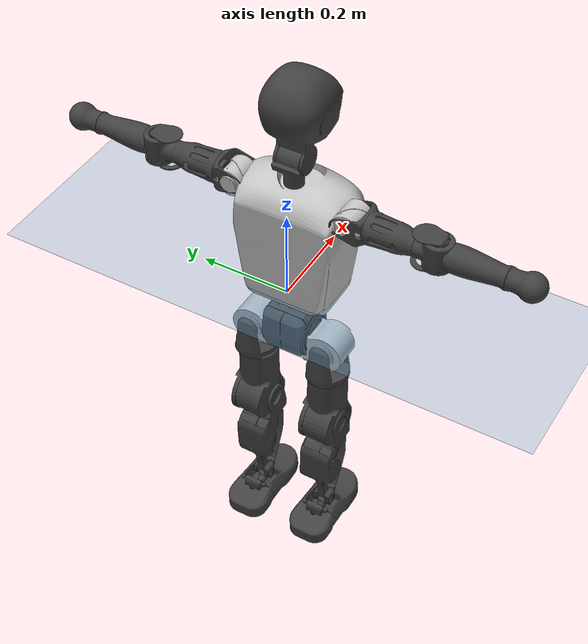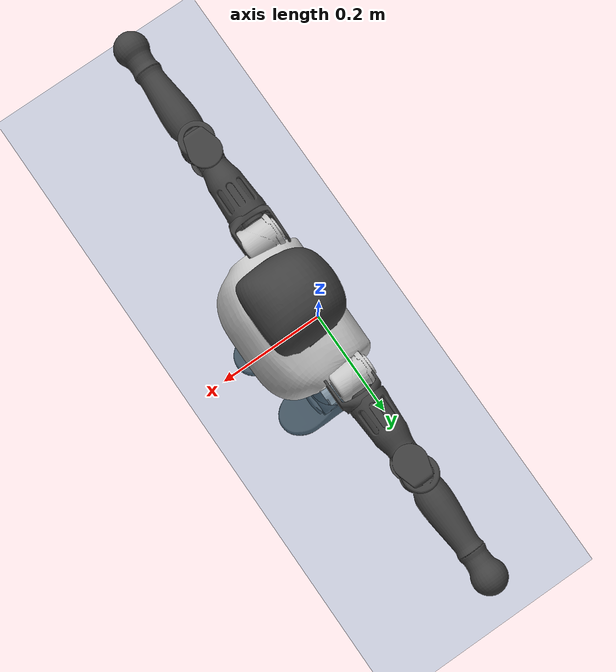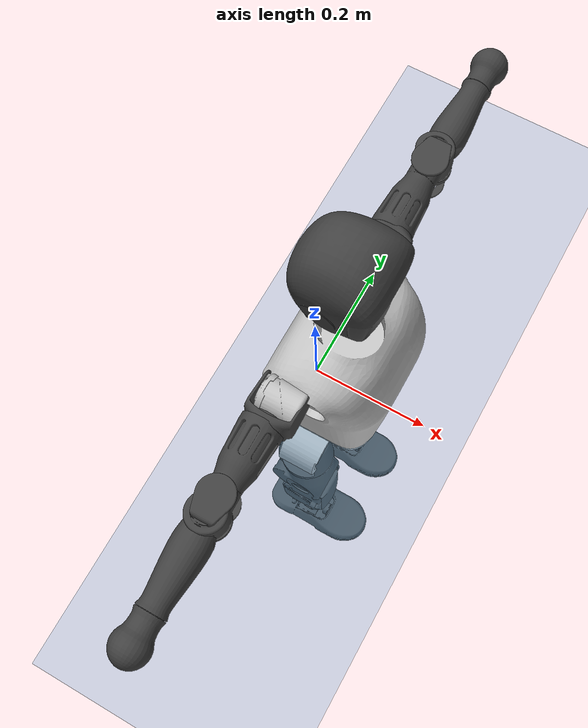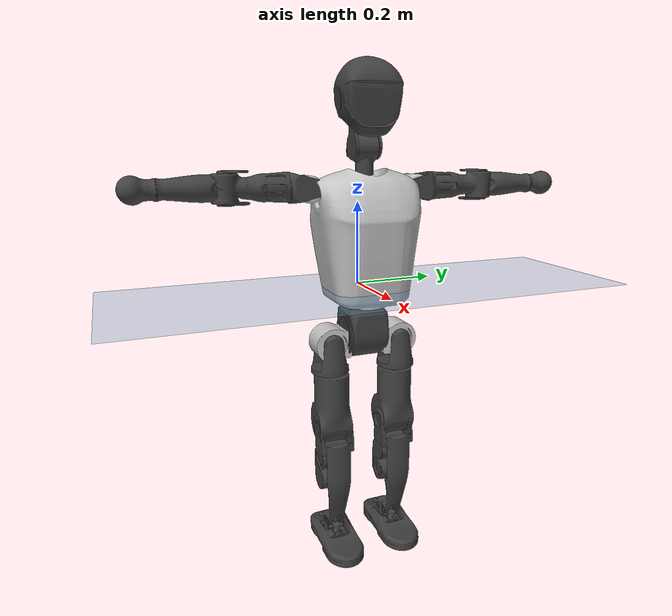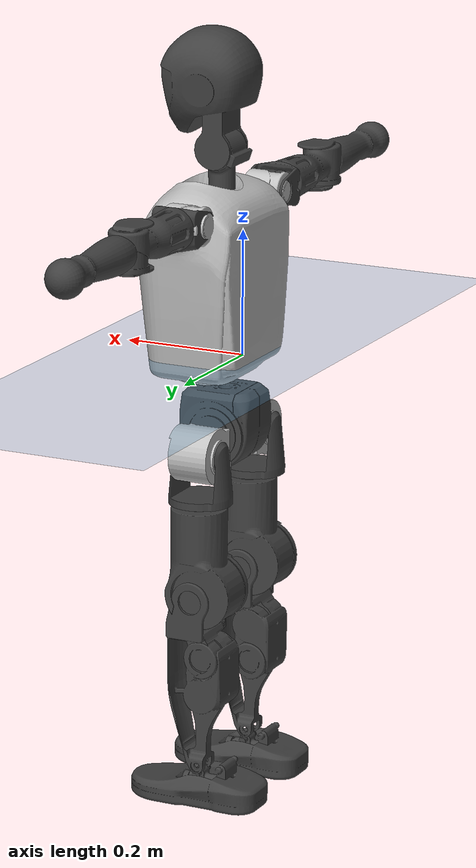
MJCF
<mujoco model="T1">
  <compiler angle="radian" assetdir="assets" balanceinertia="true" inertiafromgeom="false"/>

  <option timestep="0.005" density="1.2" viscosity="2e-05"/>

  <size nkey="1"/>

  <visual>
    <quality shadowsize="8192"/>
    <map shadowclip="0.5"/>
  </visual>

  <default>
    <default class="/">
      <joint armature="0.01" damping="0.01" frictionloss="0.1"/>
      <geom contype="0" conaffinity="0" group="1" solref="-1000 -80"/>
      <site size="0.01 0.005 0.005" group="5"/>
      <general forcelimited="true" biastype="affine" gainprm="25" biasprm="0 -25 -0.6"/>
      <default class="t1">
        <geom rgba="0.25 0.25 0.25 1"/>
        <default class="visual">
          <geom type="mesh" group="2"/>
        </default>
        <default class="collision">
          <geom group="3"/>
        </default>
        <default class="foot">
          <geom size="0.1115 0.05 0.015" type="box" condim="6" group="4" priority="1" solimp="0.015 1 0.015"/>
        </default>
        <default class="reward_collision_sphere">
          <geom group="5" rgba="1 0 0 1"/>
        </default>
      </default>
    </default>
  </default>

  <asset>
    <texture type="skybox" colorspace="auto" name="//unnamed_texture_0" builtin="gradient" rgb1="0.95 0.95 0.95" rgb2="0.95 0.95 0.95" width="100" height="600"/>
    <texture type="2d" colorspace="auto" name="texplane" builtin="checker" rgb1="0.345 0.575 0.748" rgb2="0.345 0.575 0.748" markrgb="1 1 1" width="512" height="512"/>
    <material name="MatPlane" class="/" texture="texplane" texuniform="true" texrepeat="2 2" specular="0.9"/>
    <mesh name="Trunk" class="/" file="Trunk.stl"/>
    <mesh name="H1" class="/" file="H1.stl"/>
    <mesh name="H2" class="/" file="H2.stl"/>
    <mesh name="AL1" class="/" file="AL1.stl"/>
    <mesh name="AL2" class="/" file="AL2.stl"/>
    <mesh name="AL3" class="/" file="AL3.stl"/>
    <mesh name="left_hand_link" class="/" file="left_hand_link.stl"/>
    <mesh name="AR1" class="/" file="AR1.stl"/>
    <mesh name="AR2" class="/" file="AR2.stl"/>
    <mesh name="AR3" class="/" file="AR3.stl"/>
    <mesh name="right_hand_link" class="/" file="right_hand_link.stl"/>
    <mesh name="Waist" class="/" file="Waist.stl"/>
    <mesh name="Hip_Pitch_Left" class="/" file="Hip_Pitch_Left.stl"/>
    <mesh name="Hip_Roll_Left" class="/" file="Hip_Roll_Left.stl"/>
    <mesh name="Hip_Yaw_Left" class="/" file="Hip_Yaw_Left.stl"/>
    <mesh name="Shank_Left" class="/" file="Shank_Left.stl"/>
    <mesh name="Ankle_Cross_Left" class="/" file="Ankle_Cross_Left.stl"/>
    <mesh name="left_foot_link" class="/" file="left_foot_link.stl"/>
    <mesh name="Hip_Pitch_Right" class="/" file="Hip_Pitch_Right.stl"/>
    <mesh name="Hip_Roll_Right" class="/" file="Hip_Roll_Right.stl"/>
    <mesh name="Hip_Yaw_Right" class="/" file="Hip_Yaw_Right.stl"/>
    <mesh name="Shank_Right" class="/" file="Shank_Right.stl"/>
    <mesh name="Ankle_Cross_Right" class="/" file="Ankle_Cross_Right.stl"/>
    <mesh name="right_foot_link" class="/" file="right_foot_link.stl"/>
  </asset>

  <worldbody>
    <geom name="floor" class="/" size="100 100 0.125" type="plane" group="0" material="MatPlane"/>
    <light name="toplight_shadow" class="/" pos="0 0 5" dir="0.0990148 0.0990148 -0.990148" type="directional" ambient="0.04 0.04 0.04" diffuse="0.55 0.55 0.55" specular="0.12 0.12 0.12"/>
    <light name="toplight_fill" class="/" pos="0 0 5" dir="0.0990148 0.0990148 -0.990148" type="directional" castshadow="false" ambient="0.04 0.04 0.04" diffuse="0.3 0.3 0.3" specular="0.08 0.08 0.08"/>
    <body name="trunk" childclass="t1" pos="0.000126751 -0.000834037 0.000320697" quat="0.999999 -0.000366705 -0.000724071 0.000926891">
      <inertial pos="0.026049 0.000217958 0.110238" quat="0.999938 0.00537779 -0.00347893 0.00914018" mass="5.512" diaginertia="0.00240332 0.030168 0.0727255"/>
      <joint name="//unnamed_joint_0" type="free" armature="0" damping="0" frictionloss="0"/>
      <geom name="//unnamed_geom_1" class="visual" rgba="0.76 0.76 0.76 1" mesh="Trunk"/>
      <geom name="//unnamed_geom_2" class="collision" size="0.0594049 0.0792065 0.11881" pos="0.0290936 0 0.127328" type="box"/>
      <geom name="//unnamed_geom_3" class="reward_collision_sphere" size="0.0910875" pos="0.0290936 0 0.106107"/>
      <geom name="//unnamed_geom_4" class="reward_collision_sphere" size="0.011881" pos="0.0290936 0.07057 0"/>
      <geom name="//unnamed_geom_5" class="reward_collision_sphere" size="0.011881" pos="0.0290936 -0.07057 0"/>
      <geom name="//unnamed_geom_6" class="reward_collision_sphere" size="0.011881" pos="0.0290936 0.0888352 0.190992"/>
      <geom name="//unnamed_geom_7" class="reward_collision_sphere" size="0.011881" pos="0.0290936 -0.0888352 0.190992"/>
      <site name="imu" pos="0.0169575 -0.00946748 -0.00285067" size="0.00792065"/>
      <camera name="track" pos="0 -1.66047 0" quat="0.707107 0.707107 0 0" mode="trackcom"/>
      <camera name="ego_camera" pos="0.059157 0 0.445648" quat="-0.5 -0.5 0.5 0.5"/>
      <body name="H1" pos="0.0349732 0.00365639 0.26245" quat="0.999999 0.00118852 0.00042074 -0.000127637">
        <inertial pos="-0.00108575 -0.00021253 0.0593405" quat="0.768858 -0.0274239 0.00874572 0.638772" mass="0.217531" diaginertia="6.52376e-06 9.29803e-05 0.000203531"/>
        <joint name="AAHead_yaw" pos="0 0 0" axis="0.00947844 0.011677 0.999887" range="-1.58428 1.61648" armature="0.00704574" damping="0.0165581" frictionloss="0.0833684"/>
        <geom name="//unnamed_geom_8" class="visual" mesh="H1"/>
        <body name="H2" pos="0.00170471 -0.000143618 0.0647525" quat="1 -0.00036064 -0.000339964 0.000468828">
          <inertial pos="0.00422211 0.00519752 0.10475" quat="0.988588 0.112706 -0.0636859 -0.0770403" mass="0.29825" diaginertia="5.14575e-05 0.000730674 0.00228112"/>
          <joint name="Head_pitch" pos="0 0 0" axis="-0.000717772 -1 -0.000112703" range="-1.17092 0.357363" armature="0.00788937" damping="0.0113019" frictionloss="0.0779974"/>
          <geom name="//unnamed_geom_9" class="visual" mesh="H2"/>
          <geom name="//unnamed_geom_10" class="collision" size="0.0633652" pos="0.00484894 0 0.116717"/>
          <geom name="//unnamed_geom_11" class="reward_collision_sphere" size="0.0712859" pos="0.00969787 0 0.106107"/>
        </body>
      </body>
      <body name="AL1" pos="0.0305588 0.0852658 0.233201" quat="1 -0.000141425 0.00052222 4.23552e-07">
        <inertial pos="0.00366843 0.0338931 0.00102841" quat="0.508792 0.501574 -0.493653 0.495844" mass="0.271672" diaginertia="3.74389e-05 0.000522879 0.000399395"/>
        <joint name="Left_Shoulder_Pitch" pos="0 0 0" axis="-4.83296e-05 1 2.76124e-05" range="-3.27245 1.20278" armature="0.00804348" damping="0.00666183" frictionloss="0.0797595"/>
        <geom name="//unnamed_geom_12" class="visual" rgba="0.76 0.76 0.76 1" mesh="AL1"/>
        <body name="AL2" pos="0.00418852 0.0369384 0.000257785" quat="0.999999 -0.00091061 -0.000561621 0.000280266">
          <inertial pos="0.00334667 0.0287514 0.00116379" quat="0.488022 0.51173 -0.488046 0.511643" mass="0.0774294" diaginertia="1.01832e-05 0.00012381 0.000226859"/>
          <joint name="Left_Shoulder_Roll" pos="0 0 0" axis="-0.999957 0.00689454 -0.00612502" range="-1.57121 1.78621" armature="0.00796944" damping="0" frictionloss="0.0717889"/>
          <geom name="//unnamed_geom_13" class="visual" mesh="AL2"/>
          <body name="AL3" pos="-0.00331354 0.0502021 0.00161858" quat="1 -0.00021454 -9.11015e-05 0.000126373">
            <inertial pos="0.00117253 0.0734806 -0.00140284" quat="0.708309 0.705878 0.0050012 -0.00302424" mass="0.507708" diaginertia="0.000348923 0.00519753 0.000862138"/>
            <joint name="Left_Elbow_Pitch" pos="0 0 0" axis="0.00264119 -0.99994 -0.0106641" range="-2.30416 2.23431" armature="0.00880149" damping="0" frictionloss="0.0796858"/>
            <geom name="//unnamed_geom_14" class="visual" mesh="AL3"/>
            <geom name="//unnamed_geom_15" class="collision" size="0.023762 0.0594049" pos="0 0.0415118 0" quat="0.707105 0.707108 0 0" type="cylinder"/>
            <geom name="//unnamed_geom_16" class="reward_collision_sphere" size="0.0285143"/>
            <body name="left_hand_link" pos="0.00269143 0.12287 0.000395789" quat="1 4.96001e-05 0.000422303 -8.62831e-05">
              <inertial pos="-0.00499747 0.0928105 -0.00174841" quat="0.709356 0.704764 0.009614 -0.00539645" mass="0.158689" diaginertia="0.00021197 0.00313782 0.000292349"/>
              <joint name="Left_Elbow_Yaw" pos="0 0 0" axis="0.000264819 0.00025908 1" stiffness="0.00779787" range="-2.41738 -0.0115104" armature="0.00755275" damping="0.00517443" frictionloss="0.0745427"/>
              <geom name="//unnamed_geom_17" class="visual" mesh="left_hand_link"/>
              <geom name="//unnamed_geom_18" class="collision" size="0.023762 0.0693057" pos="0 0.107931 0" quat="0.707105 0.707108 0 0" type="cylinder"/>
              <geom name="//unnamed_geom_19" class="reward_collision_sphere" size="0.0396033"/>
              <geom name="//unnamed_geom_20" class="reward_collision_sphere" size="0.0277223" pos="0 0.0913259 0"/>
              <geom name="//unnamed_geom_21" class="reward_collision_sphere" size="0.0277223" pos="0 0.178501 0"/>
            </body>
          </body>
        </body>
      </body>
      <body name="AR1" pos="0.0237551 -0.0854428 0.233552" quat="1 -0.000188843 0.000266071 -0.000389835">
        <inertial pos="0.000896092 -0.0351434 -9.95982e-06" quat="0.505639 0.496284 -0.503239 0.494754" mass="0.260769" diaginertia="3.59012e-05 0.000520351 0.000394888"/>
        <joint name="Right_Shoulder_Pitch" pos="0 0 0" axis="-0.00462636 -0.999979 -0.00461994" range="-1.2102 3.35787" armature="0.00787191" damping="0.0242339" frictionloss="0.0759217"/>
        <geom name="//unnamed_geom_22" class="visual" rgba="0.76 0.76 0.76 1" mesh="AR1"/>
        <body name="AR2" pos="-0.00403697 -0.0367381 0.00278453" quat="1 0.000351009 0.000693116 0.000399221">
          <inertial pos="0.000891311 -0.0325289 0.00383385" quat="0.50832 0.485658 -0.518032 0.487226" mass="0.0790644" diaginertia="1.07525e-05 0.000142769 0.00024341"/>
          <joint name="Right_Shoulder_Roll" pos="0 0 0" axis="-0.999928 0.0118387 0.00183035" stiffness="0.014897" range="-1.82477 1.52855" armature="0.00851911" damping="0" frictionloss="0.0769822"/>
          <geom name="//unnamed_geom_23" class="visual" mesh="AR2"/>
          <body name="AR3" pos="-0.00341329 -0.0501224 0.00189625" quat="1 0.000199278 0.000351865 -0.000358445">
            <inertial pos="0.00301945 -0.0687071 -0.000291985" quat="0.707362 0.706828 0.0014814 -0.00548129" mass="0.502997" diaginertia="0.000330812 0.0050243 0.000789477"/>
            <joint name="Right_Elbow_Pitch" pos="0 0 0" axis="-0.00568006 0.999981 0.00247788" stiffness="0.00868928" range="-2.26577 2.26327" armature="0.00820013" damping="0" frictionloss="0.0919974"/>
            <geom name="//unnamed_geom_24" class="visual" mesh="AR3"/>
            <geom name="//unnamed_geom_25" class="collision" size="0.023762 0.0594049" pos="0 -0.0415118 0" quat="0.707105 0.707108 0 0" type="cylinder"/>
            <geom name="//unnamed_geom_26" class="reward_collision_sphere" size="0.0285143"/>
            <body name="right_hand_link" pos="0.000137609 -0.121304 0.0014984" quat="1 0.000151527 -0.000272657 0.000112244">
              <inertial pos="-0.000480512 -0.0933294 -0.00140026" quat="0.70623 0.707982 0.000237647 0.00100669" mass="0.159149" diaginertia="0.000219652 0.00321807 0.00027525"/>
              <joint name="Right_Elbow_Yaw" pos="0 0 0" axis="-0.00356891 -0.00308573 0.999989" range="0.014134 2.39154" armature="0.0075124" damping="0" frictionloss="0.0899603"/>
              <geom name="//unnamed_geom_27" class="visual" mesh="right_hand_link"/>
              <geom name="//unnamed_geom_28" class="collision" size="0.023762 0.0693057" pos="0 -0.107931 0" quat="0.707105 0.707108 0 0" type="cylinder"/>
              <geom name="//unnamed_geom_29" class="reward_collision_sphere" size="0.0396033"/>
              <geom name="//unnamed_geom_30" class="reward_collision_sphere" size="0.0277223" pos="0 -0.0913259 0"/>
              <geom name="//unnamed_geom_31" class="reward_collision_sphere" size="0.0277223" pos="0 -0.178501 0"/>
            </body>
          </body>
        </body>
      </body>
      <body name="Waist" pos="0.0300944 0.000917509 -0.119692" quat="0.999999 -0.00092206 -6.05818e-05 -0.000866578">
        <inertial pos="-0.000841078 -0.000782894 0.00710073" quat="0.983023 -0.00192964 -0.183469 0.000752752" mass="1.2743" diaginertia="0.000134118 0.00213422 0.00593718"/>
        <joint name="Waist" pos="0 0 0" axis="0.00457412 -0.000253322 0.99999" range="-1.58194 1.55443" armature="0.00761403" damping="0.0179837" frictionloss="0.0897115"/>
        <geom name="//unnamed_geom_32" class="visual" mesh="Waist"/>
        <body name="Hip_Pitch_Left" pos="0.00138154 0.090669 -0.00236622" quat="1 0.000120535 -0.000456862 -0.000185987">
          <inertial pos="-0.00100565 -0.00486733 -0.017249" quat="0.975419 0.219337 0.0211867 0.000207304" mass="0.495817" diaginertia="4.73308e-05 0.000558987 0.00159951"/>
          <joint name="Left_Hip_Pitch" pos="0 0 0" axis="-0.0155537 0.999877 -0.00218352" stiffness="0.00454032" range="-1.84634 1.57647" armature="0.00786773" damping="0" frictionloss="0.0775847"/>
          <geom name="//unnamed_geom_33" class="visual" rgba="0.76 0.76 0.76 1" mesh="Hip_Pitch_Left"/>
          <body name="Hip_Roll_Left" pos="-0.00269748 0.00241629 -0.0198294" quat="0.999999 0.000108348 -0.000824617 -0.000808756">
            <inertial pos="0.000909066 0.000161067 -0.0569455" quat="0.708056 -0.00685612 -0.005083 0.706105" mass="0.203945" diaginertia="5.17167e-05 0.000624424 0.00074762"/>
            <joint name="Left_Hip_Roll" pos="0 0 0" axis="-0.999952 0.00737824 -0.00651781" stiffness="0.0075116" range="-1.6366 0.166132" armature="0.00749334" damping="0.00541337" frictionloss="0.0712272"/>
            <geom name="//unnamed_geom_34" class="visual" mesh="Hip_Roll_Left"/>
            <geom name="//unnamed_geom_35" class="reward_collision_sphere" size="0.0435636"/>
            <body name="Hip_Yaw_Left" pos="0.00148157 -0.00238238 -0.0861769" quat="0.999999 -0.00111947 -0.000247557 0.000559572">
              <inertial pos="0.00020805 -0.00356614 -0.0972035" quat="0.699928 -0.0402722 -0.0416621 0.711858" mass="1.0401" diaginertia="0.000641458 0.00970613 0.00343047"/>
              <joint name="Left_Hip_Yaw" pos="0 0 0" axis="-0.00266297 -0.0123573 -0.99992" stiffness="0.0176885" range="-1.08343 0.961321" armature="0.00798326" damping="0.0175211" frictionloss="0.0732042"/>
              <geom name="//unnamed_geom_36" class="visual" mesh="Hip_Yaw_Left"/>
              <geom name="//unnamed_geom_37" class="collision" size="0.0396033 0.0633652" type="cylinder"/>
              <body name="Shank_Left" pos="-0.00307131 -0.00254792 -0.144789" quat="1 0.000230879 0.000257141 -0.000273184">
                <inertial pos="0.00111921 0.00246945 -0.12947" quat="0.995947 0.00423964 -0.0327393 0.0836636" mass="0.854219" diaginertia="0.00093123 0.0128173 0.00250165"/>
                <joint name="Left_Knee_Pitch" pos="0 0 0" axis="0.00153322 0.999955 -0.00938215" range="-0.0140579 2.32358" armature="0.0081321" damping="0.0214397" frictionloss="0.0654554"/>
                <geom name="//unnamed_geom_38" class="visual" mesh="Shank_Left"/>
                <geom name="//unnamed_geom_39" class="collision" size="0.0396033 0.0594049" pos="0 0 -0.127328" type="cylinder"/>
                <geom name="//unnamed_geom_40" class="reward_collision_sphere" size="0.0514842"/>
                <body name="Ankle_Cross_Left" pos="0.00153098 -0.00283434 -0.295154" quat="1 -0.000236437 0.000564434 0.000422057">
                  <inertial pos="-0.0024773 0.00235044 -0.0102528" quat="0.435353 0.553118 0.551891 0.447151" mass="0.0366287" diaginertia="8.0352e-07 1.01734e-05 1.59464e-05"/>
                  <joint name="Left_Ankle_Pitch" pos="0 0 0" axis="0.00365019 0.999991 -0.00235896" range="-0.856712 0.350437" armature="0.00624499" damping="0" frictionloss="0.0725103"/>
                  <geom name="//unnamed_geom_41" class="visual" mesh="Ankle_Cross_Left"/>
                  <body name="left_foot_link" pos="-0.00391113 0.00228016 -0.0146736" quat="1 0.000159587 -0.000200966 0.000115192">
                    <inertial pos="0.00334426 1.54955e-05 -0.00959877" quat="0.00225932 0.612965 0.00424748 0.790095" mass="0.337156" diaginertia="7.36525e-05 0.000992974 0.00307867"/>
                    <joint name="Left_Ankle_Roll" pos="0 0 0" axis="-0.999999 -0.00111218 0.000302673" stiffness="0.0110866" range="-0.424007 0.412341" armature="0.00803134" damping="0.0312188" frictionloss="0.0702646"/>
                    <geom name="//unnamed_geom_42" class="visual" mesh="left_foot_link"/>
                    <geom name="left_foot" class="foot" size="0.0900937 0.0452437 0.0114271" pos="0.00484894 0 -0.015916"/>
                    <geom name="//unnamed_geom_44" class="reward_collision_sphere" size="0.0411874" pos="0.00484894 0 -0.015916"/>
                    <geom name="//unnamed_geom_45" class="reward_collision_sphere" size="0.023762" pos="0.0460649 -0.0190954 -0.015916"/>
                    <geom name="//unnamed_geom_46" class="reward_collision_sphere" size="0.023762" pos="-0.0339426 -0.0190954 -0.015916"/>
                    <site name="left_foot" class="foot" pos="0.00484894 0 -0.015916" size="0.00792065"/>
                  </body>
                </body>
              </body>
            </body>
          </body>
        </body>
        <body name="Hip_Pitch_Right" pos="-0.000951204 -0.0869942 -0.000276422" quat="1 3.99712e-05 0.000210425 0.000124235">
          <inertial pos="-0.00187856 0.00574488 -0.0171671" quat="0.973224 -0.229487 0.00500895 -0.0120222" mass="0.51956" diaginertia="5.06158e-05 0.000555567 0.00171272"/>
          <joint name="Right_Hip_Pitch" pos="0 0 0" axis="0.000386645 -0.999964 -0.00848428" range="-1.46947 1.72566" armature="0.00848888" damping="0.000256807" frictionloss="0.0917954"/>
          <geom name="//unnamed_geom_47" class="visual" rgba="0.76 0.76 0.76 1" mesh="Hip_Pitch_Right"/>
          <body name="Hip_Roll_Right" pos="-0.0037061 0.000808266 -0.0188058" quat="1 0.000131857 4.82131e-06 0.000435687">
            <inertial pos="-0.00146865 0.000773829 -0.0582455" quat="0.709718 0.000391269 0.00403547 0.704475" mass="0.194446" diaginertia="4.79137e-05 0.000592851 0.000678754"/>
            <joint name="Right_Hip_Roll" pos="0 0 0" axis="-0.999862 0.014162 -0.00870785" range="-0.211398 1.51627" armature="0.00774864" damping="0.0161529" frictionloss="0.0892154"/>
            <geom name="//unnamed_geom_48" class="visual" mesh="Hip_Roll_Right"/>
            <geom name="//unnamed_geom_49" class="reward_collision_sphere" size="0.0435636"/>
            <body name="Hip_Yaw_Right" pos="0.00417668 0.00218186 -0.0854334" quat="1 0.000752503 0.000452825 -8.50538e-05">
              <inertial pos="-0.00213271 -0.0030359 -0.0953566" quat="0.710419 -0.0273894 -0.0560067 0.701012" mass="1.07552" diaginertia="0.000682514 0.00977069 0.00331406"/>
              <joint name="Right_Hip_Yaw" pos="0 0 0" axis="0.00348877 0.00423116 -0.999985" range="-1.05249 1.05623" armature="0.00692249" damping="0" frictionloss="0.0785686"/>
              <geom name="//unnamed_geom_50" class="visual" mesh="Hip_Yaw_Right"/>
              <geom name="//unnamed_geom_51" class="collision" size="0.0396033 0.0633652" type="cylinder"/>
              <body name="Shank_Right" pos="-0.0034118 0.00356956 -0.143307" quat="1 -3.63807e-05 -8.31655e-05 6.88442e-05">
                <inertial pos="0.00107704 -0.00524182 -0.131765" quat="0.999318 -0.00601518 -0.0196892 -0.0306493" mass="0.898155" diaginertia="0.000991106 0.0142865 0.00267047"/>
                <joint name="Right_Knee_Pitch" pos="0 0 0" axis="-0.0108949 -0.999899 -0.00909083" stiffness="0.00226463" range="-2.3632 0.0102638" armature="0.00811276" damping="0.0239995" frictionloss="0.0725712"/>
                <geom name="//unnamed_geom_52" class="visual" mesh="Shank_Right"/>
                <geom name="//unnamed_geom_53" class="collision" size="0.0396033 0.0594049" pos="0 0 -0.127328" type="cylinder"/>
                <geom name="//unnamed_geom_54" class="reward_collision_sphere" size="0.0514842"/>
                <body name="Ankle_Cross_Right" pos="0.00344282 0.00147625 -0.299359" quat="1 0.000266437 -0.000564587 0.000423435">
                  <inertial pos="-0.004235 0.00174498 -0.0059515" quat="0.451513 0.558789 0.546287 0.430653" mass="0.035634" diaginertia="7.6865e-07 1.09758e-05 1.5637e-05"/>
                  <joint name="Right_Ankle_Pitch" pos="0 0 0" axis="0.00285331 -0.999995 -0.00118587" stiffness="0.010696" range="-0.320838 0.872237" armature="0.00780737" damping="0.0225741" frictionloss="0.0785657"/>
                  <geom name="//unnamed_geom_55" class="visual" mesh="Ankle_Cross_Right"/>
                  <body name="right_foot_link" pos="0.00373446 4.2139e-05 -0.0153382" quat="1 8.28451e-05 -6.55801e-05 -2.92825e-05">
                    <inertial pos="-0.00244453 0.00183861 -0.012086" quat="-0.00299063 0.620411 -9.89821e-05 0.784271" mass="0.330882" diaginertia="7.07772e-05 0.000972981 0.00293128"/>
                    <joint name="Right_Ankle_Roll" pos="0 0 0" axis="-1 -0.00025607 0.000622838" range="-0.441298 0.432694" armature="0.00712417" damping="0" frictionloss="0.0789586"/>
                    <geom name="//unnamed_geom_56" class="visual" mesh="right_foot_link"/>
                    <geom name="right_foot" class="foot" size="0.104069 0.0442714 0.0129325" pos="0.00484894 0 -0.015916"/>
                    <geom name="//unnamed_geom_58" class="reward_collision_sphere" size="0.0316826"/>
                    <geom name="//unnamed_geom_59" class="reward_collision_sphere" size="0.023762" pos="0.00484894 0 -0.015916"/>
                    <geom name="//unnamed_geom_60" class="reward_collision_sphere" size="0.023762" pos="0.0460649 0.0190954 -0.015916"/>
                    <geom name="//unnamed_geom_61" class="reward_collision_sphere" size="0.023762" pos="-0.0339426 0.0190954 -0.015916"/>
                    <site name="right_foot" class="foot" pos="0.00484894 0 -0.015916" size="0.00792065"/>
                  </body>
                </body>
              </body>
            </body>
          </body>
        </body>
      </body>
    </body>
  </worldbody>

  <contact>
    <pair class="/" geom1="floor" geom2="left_foot" name="//unnamed_contact_0"/>
    <pair class="/" geom1="floor" geom2="right_foot" name="//unnamed_contact_1"/>
  </contact>

  <actuator>
    <general name="AAHead_yaw" class="/" joint="AAHead_yaw" forcerange="-5.5028 5.5028" gainprm="21.1993" biasprm="0 -21.1993 -0.487788"/>
    <general name="Head_pitch" class="/" joint="Head_pitch" forcerange="-6.06535 6.06535" gainprm="21.1993" biasprm="0 -21.1993 -0.487788"/>
    <general name="Left_Shoulder_Pitch" class="/" joint="Left_Shoulder_Pitch" forcerange="-14.9538 14.9538" gainprm="21.1993" biasprm="0 -21.1993 -0.487788"/>
    <general name="Left_Shoulder_Roll" class="/" joint="Left_Shoulder_Roll" forcerange="-13.7976 13.7976" gainprm="21.1993" biasprm="0 -21.1993 -0.487788"/>
    <general name="Left_Elbow_Pitch" class="/" joint="Left_Elbow_Pitch" forcerange="-13.9349 13.9349" gainprm="21.1993" biasprm="0 -21.1993 -0.487788"/>
    <general name="Left_Elbow_Yaw" class="/" joint="Left_Elbow_Yaw" forcerange="-14.8094 14.8094" gainprm="21.1993" biasprm="0 -21.1993 -0.487788"/>
    <general name="Right_Shoulder_Pitch" class="/" joint="Right_Shoulder_Pitch" forcerange="-13.3384 13.3384" gainprm="21.1993" biasprm="0 -21.1993 -0.487788"/>
    <general name="Right_Shoulder_Roll" class="/" joint="Right_Shoulder_Roll" forcerange="-12.9119 12.9119" gainprm="21.1993" biasprm="0 -21.1993 -0.487788"/>
    <general name="Right_Elbow_Pitch" class="/" joint="Right_Elbow_Pitch" forcerange="-14.0965 14.0965" gainprm="21.1993" biasprm="0 -21.1993 -0.487788"/>
    <general name="Right_Elbow_Yaw" class="/" joint="Right_Elbow_Yaw" forcerange="-15.5812 15.5812" gainprm="21.1993" biasprm="0 -21.1993 -0.487788"/>
    <general name="Waist" class="/" joint="Waist" forcerange="-21.808 21.808" gainprm="21.1993" biasprm="0 -21.1993 -0.487788"/>
    <general name="Left_Hip_Pitch" class="/" joint="Left_Hip_Pitch" forcerange="-36.3268 36.3268" gainprm="21.1993" biasprm="0 -21.1993 -0.487788"/>
    <general name="Left_Hip_Roll" class="/" joint="Left_Hip_Roll" forcerange="-25.9695 25.9695" gainprm="21.1993" biasprm="0 -21.1993 -0.487788"/>
    <general name="Left_Hip_Yaw" class="/" joint="Left_Hip_Yaw" forcerange="-24.432 24.432" gainprm="21.1993" biasprm="0 -21.1993 -0.487788"/>
    <general name="Left_Knee_Pitch" class="/" joint="Left_Knee_Pitch" forcerange="-50.0718 50.0718" gainprm="21.1993" biasprm="0 -21.1993 -0.487788"/>
    <general name="Left_Ankle_Pitch" class="/" joint="Left_Ankle_Pitch" forcerange="-15.094 15.094" gainprm="21.1993" biasprm="0 -21.1993 -0.487788"/>
    <general name="Left_Ankle_Roll" class="/" joint="Left_Ankle_Roll" forcerange="-11.655 11.655" gainprm="21.1993" biasprm="0 -21.1993 -0.487788"/>
    <general name="Right_Hip_Pitch" class="/" joint="Right_Hip_Pitch" forcerange="-34.0329 34.0329" gainprm="21.1993" biasprm="0 -21.1993 -0.487788"/>
    <general name="Right_Hip_Roll" class="/" joint="Right_Hip_Roll" forcerange="-21.6406 21.6406" gainprm="21.1993" biasprm="0 -21.1993 -0.487788"/>
    <general name="Right_Hip_Yaw" class="/" joint="Right_Hip_Yaw" forcerange="-21.6982 21.6982" gainprm="21.1993" biasprm="0 -21.1993 -0.487788"/>
    <general name="Right_Knee_Pitch" class="/" joint="Right_Knee_Pitch" forcerange="-49.2696 49.2696" gainprm="21.1993" biasprm="0 -21.1993 -0.487788"/>
    <general name="Right_Ankle_Pitch" class="/" joint="Right_Ankle_Pitch" forcerange="-17.194 17.194" gainprm="21.1993" biasprm="0 -21.1993 -0.487788"/>
    <general name="Right_Ankle_Roll" class="/" joint="Right_Ankle_Roll" forcerange="-12.9585 12.9585" gainprm="21.1993" biasprm="0 -21.1993 -0.487788"/>
  </actuator>

  <sensor>
    <gyro site="imu" name="imu_angular_velocity"/>
    <velocimeter site="imu" name="imu_linear_velocity"/>
    <framelinvel objtype="site" objname="left_foot" name="left_foot_global_linear_velocity"/>
    <framelinvel objtype="site" objname="right_foot" name="right_foot_global_linear_velocity"/>
  </sensor>

  <keyframe>
    <key name="home" qpos="0 0 0.6385 1 0 0 0 0 0 0 1.4 0 -0.4 0 -1.4 0 0.4 0 -0.4 0 0 0.8 -0.4 0 0.4 0 0 -0.8 0.4 0"/>
  </keyframe>
</mujoco>
